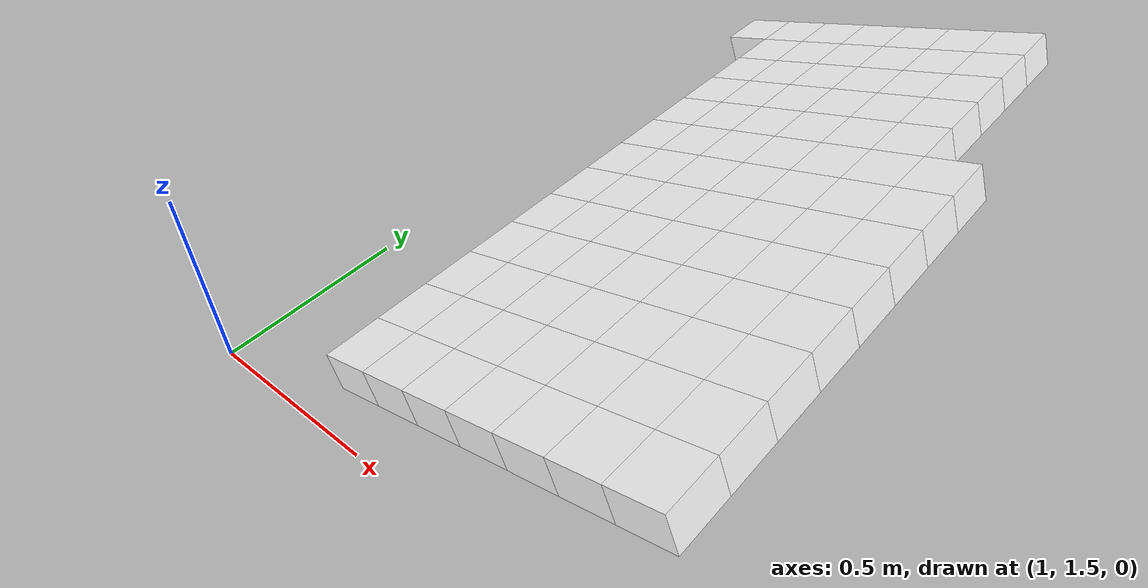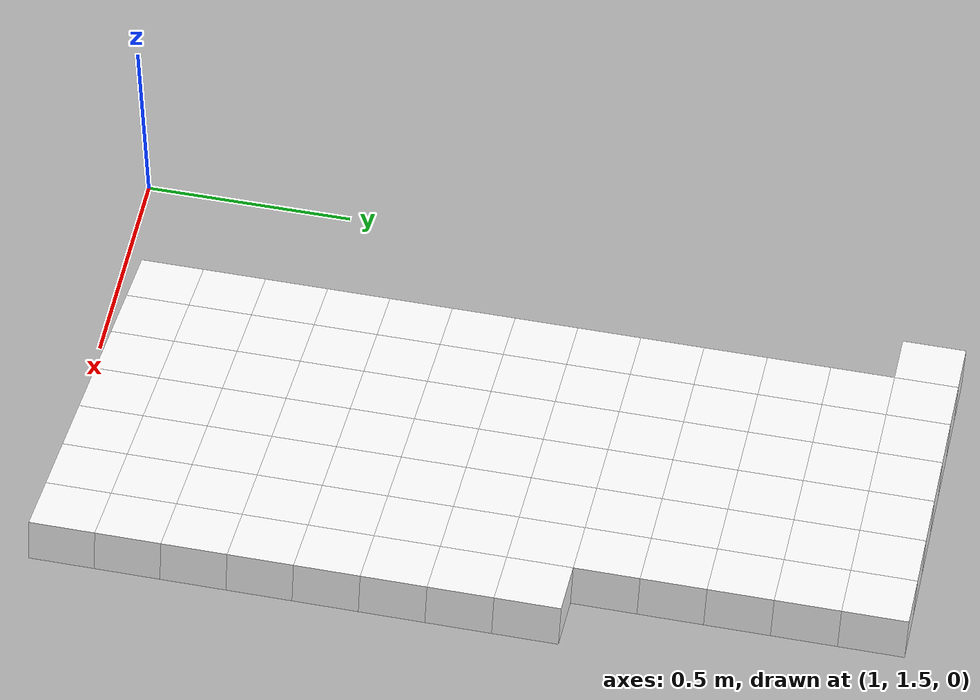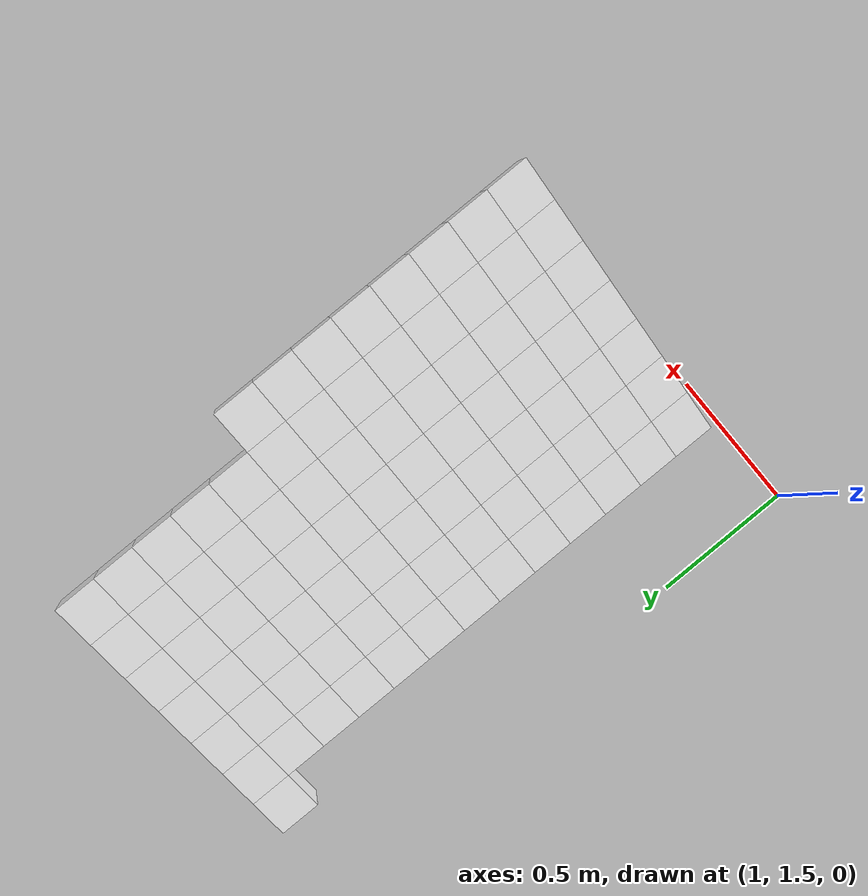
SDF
<sdf version="1.7">
 <world name="default">
  <include><uri>model://sun</uri></include>
  <model name="static_environment">
   <static>true</static>
   <link name="region_473">
    <pose>1.4350740071713122 1.65 0.1466852591640488 0.0 -0.3 0.0</pose>
    <collision name="region_473_collision">
     <geometry><box><size>0.15 0.15 0.1</size></box></geometry>
     <surface><friction><ode><mu>1.0</mu><mu2>1.0</mu2></ode></friction></surface>
    </collision>
    <visual name="region_473_visual">
     <geometry><box><size>0.15 0.15 0.1</size></box></geometry>
     <material><ambient>1.0 1.0 1.0 1.0</ambient><diffuse>1.0 1.0 1.0 1.0</diffuse></material>
    </visual>
   </link>
   <link name="region_474">
    <pose>1.5783744805401532 1.65 0.1910132901632498 0.0 -0.3 0.0</pose>
    <collision name="region_474_collision">
     <geometry><box><size>0.15 0.15 0.1</size></box></geometry>
     <surface><friction><ode><mu>1.0</mu><mu2>1.0</mu2></ode></friction></surface>
    </collision>
    <visual name="region_474_visual">
     <geometry><box><size>0.15 0.15 0.1</size></box></geometry>
     <material><ambient>1.0 1.0 1.0 1.0</ambient><diffuse>1.0 1.0 1.0 1.0</diffuse></material>
    </visual>
   </link>
   <link name="region_475">
    <pose>1.7216749539089942 1.65 0.2353413211624507 0.0 -0.3 0.0</pose>
    <collision name="region_475_collision">
     <geometry><box><size>0.15 0.15 0.1</size></box></geometry>
     <surface><friction><ode><mu>1.0</mu><mu2>1.0</mu2></ode></friction></surface>
    </collision>
    <visual name="region_475_visual">
     <geometry><box><size>0.15 0.15 0.1</size></box></geometry>
     <material><ambient>1.0 1.0 1.0 1.0</ambient><diffuse>1.0 1.0 1.0 1.0</diffuse></material>
    </visual>
   </link>
   <link name="region_476">
    <pose>1.8649754272778347 1.65 0.2796693521616516 0.0 -0.3 0.0</pose>
    <collision name="region_476_collision">
     <geometry><box><size>0.15 0.15 0.1</size></box></geometry>
     <surface><friction><ode><mu>1.0</mu><mu2>1.0</mu2></ode></friction></surface>
    </collision>
    <visual name="region_476_visual">
     <geometry><box><size>0.15 0.15 0.1</size></box></geometry>
     <material><ambient>1.0 1.0 1.0 1.0</ambient><diffuse>1.0 1.0 1.0 1.0</diffuse></material>
    </visual>
   </link>
   <link name="region_477">
    <pose>2.0082759006466757 1.65 0.3239973831608525 0.0 -0.3 0.0</pose>
    <collision name="region_477_collision">
     <geometry><box><size>0.15 0.15 0.1</size></box></geometry>
     <surface><friction><ode><mu>1.0</mu><mu2>1.0</mu2></ode></friction></surface>
    </collision>
    <visual name="region_477_visual">
     <geometry><box><size>0.15 0.15 0.1</size></box></geometry>
     <material><ambient>1.0 1.0 1.0 1.0</ambient><diffuse>1.0 1.0 1.0 1.0</diffuse></material>
    </visual>
   </link>
   <link name="region_478">
    <pose>2.151576374015516 1.65 0.36832541416005343 0.0 -0.3 0.0</pose>
    <collision name="region_478_collision">
     <geometry><box><size>0.15 0.15 0.1</size></box></geometry>
     <surface><friction><ode><mu>1.0</mu><mu2>1.0</mu2></ode></friction></surface>
    </collision>
    <visual name="region_478_visual">
     <geometry><box><size>0.15 0.15 0.1</size></box></geometry>
     <material><ambient>1.0 1.0 1.0 1.0</ambient><diffuse>1.0 1.0 1.0 1.0</diffuse></material>
    </visual>
   </link>
   <link name="region_479">
    <pose>2.2948768473843577 1.65 0.41265344515925434 0.0 -0.3 0.0</pose>
    <collision name="region_479_collision">
     <geometry><box><size>0.15 0.15 0.1</size></box></geometry>
     <surface><friction><ode><mu>1.0</mu><mu2>1.0</mu2></ode></friction></surface>
    </collision>
    <visual name="region_479_visual">
     <geometry><box><size>0.15 0.15 0.1</size></box></geometry>
     <material><ambient>1.0 1.0 1.0 1.0</ambient><diffuse>1.0 1.0 1.0 1.0</diffuse></material>
    </visual>
   </link>
   <link name="region_483">
    <pose>1.4350740071713122 1.7999999999999998 0.1466852591640488 0.0 -0.3 0.0</pose>
    <collision name="region_483_collision">
     <geometry><box><size>0.15 0.15 0.1</size></box></geometry>
     <surface><friction><ode><mu>1.0</mu><mu2>1.0</mu2></ode></friction></surface>
    </collision>
    <visual name="region_483_visual">
     <geometry><box><size>0.15 0.15 0.1</size></box></geometry>
     <material><ambient>1.0 1.0 1.0 1.0</ambient><diffuse>1.0 1.0 1.0 1.0</diffuse></material>
    </visual>
   </link>
   <link name="region_484">
    <pose>1.5783744805401532 1.7999999999999998 0.1910132901632498 0.0 -0.3 0.0</pose>
    <collision name="region_484_collision">
     <geometry><box><size>0.15 0.15 0.1</size></box></geometry>
     <surface><friction><ode><mu>1.0</mu><mu2>1.0</mu2></ode></friction></surface>
    </collision>
    <visual name="region_484_visual">
     <geometry><box><size>0.15 0.15 0.1</size></box></geometry>
     <material><ambient>1.0 1.0 1.0 1.0</ambient><diffuse>1.0 1.0 1.0 1.0</diffuse></material>
    </visual>
   </link>
   <link name="region_485">
    <pose>1.7216749539089942 1.7999999999999998 0.2353413211624507 0.0 -0.3 0.0</pose>
    <collision name="region_485_collision">
     <geometry><box><size>0.15 0.15 0.1</size></box></geometry>
     <surface><friction><ode><mu>1.0</mu><mu2>1.0</mu2></ode></friction></surface>
    </collision>
    <visual name="region_485_visual">
     <geometry><box><size>0.15 0.15 0.1</size></box></geometry>
     <material><ambient>1.0 1.0 1.0 1.0</ambient><diffuse>1.0 1.0 1.0 1.0</diffuse></material>
    </visual>
   </link>
   <link name="region_486">
    <pose>1.8649754272778347 1.7999999999999998 0.2796693521616516 0.0 -0.3 0.0</pose>
    <collision name="region_486_collision">
     <geometry><box><size>0.15 0.15 0.1</size></box></geometry>
     <surface><friction><ode><mu>1.0</mu><mu2>1.0</mu2></ode></friction></surface>
    </collision>
    <visual name="region_486_visual">
     <geometry><box><size>0.15 0.15 0.1</size></box></geometry>
     <material><ambient>1.0 1.0 1.0 1.0</ambient><diffuse>1.0 1.0 1.0 1.0</diffuse></material>
    </visual>
   </link>
   <link name="region_487">
    <pose>2.0082759006466757 1.7999999999999998 0.3239973831608525 0.0 -0.3 0.0</pose>
    <collision name="region_487_collision">
     <geometry><box><size>0.15 0.15 0.1</size></box></geometry>
     <surface><friction><ode><mu>1.0</mu><mu2>1.0</mu2></ode></friction></surface>
    </collision>
    <visual name="region_487_visual">
     <geometry><box><size>0.15 0.15 0.1</size></box></geometry>
     <material><ambient>1.0 1.0 1.0 1.0</ambient><diffuse>1.0 1.0 1.0 1.0</diffuse></material>
    </visual>
   </link>
   <link name="region_488">
    <pose>2.151576374015516 1.7999999999999998 0.36832541416005343 0.0 -0.3 0.0</pose>
    <collision name="region_488_collision">
     <geometry><box><size>0.15 0.15 0.1</size></box></geometry>
     <surface><friction><ode><mu>1.0</mu><mu2>1.0</mu2></ode></friction></surface>
    </collision>
    <visual name="region_488_visual">
     <geometry><box><size>0.15 0.15 0.1</size></box></geometry>
     <material><ambient>1.0 1.0 1.0 1.0</ambient><diffuse>1.0 1.0 1.0 1.0</diffuse></material>
    </visual>
   </link>
   <link name="region_489">
    <pose>2.2948768473843577 1.7999999999999998 0.41265344515925434 0.0 -0.3 0.0</pose>
    <collision name="region_489_collision">
     <geometry><box><size>0.15 0.15 0.1</size></box></geometry>
     <surface><friction><ode><mu>1.0</mu><mu2>1.0</mu2></ode></friction></surface>
    </collision>
    <visual name="region_489_visual">
     <geometry><box><size>0.15 0.15 0.1</size></box></geometry>
     <material><ambient>1.0 1.0 1.0 1.0</ambient><diffuse>1.0 1.0 1.0 1.0</diffuse></material>
    </visual>
   </link>
   <link name="region_493">
    <pose>1.4350740071713122 1.9499999999999997 0.1466852591640488 0.0 -0.3 0.0</pose>
    <collision name="region_493_collision">
     <geometry><box><size>0.15 0.15 0.1</size></box></geometry>
     <surface><friction><ode><mu>1.0</mu><mu2>1.0</mu2></ode></friction></surface>
    </collision>
    <visual name="region_493_visual">
     <geometry><box><size>0.15 0.15 0.1</size></box></geometry>
     <material><ambient>1.0 1.0 1.0 1.0</ambient><diffuse>1.0 1.0 1.0 1.0</diffuse></material>
    </visual>
   </link>
   <link name="region_494">
    <pose>1.5783744805401532 1.9499999999999997 0.1910132901632498 0.0 -0.3 0.0</pose>
    <collision name="region_494_collision">
     <geometry><box><size>0.15 0.15 0.1</size></box></geometry>
     <surface><friction><ode><mu>1.0</mu><mu2>1.0</mu2></ode></friction></surface>
    </collision>
    <visual name="region_494_visual">
     <geometry><box><size>0.15 0.15 0.1</size></box></geometry>
     <material><ambient>1.0 1.0 1.0 1.0</ambient><diffuse>1.0 1.0 1.0 1.0</diffuse></material>
    </visual>
   </link>
   <link name="region_495">
    <pose>1.7216749539089942 1.9499999999999997 0.2353413211624507 0.0 -0.3 0.0</pose>
    <collision name="region_495_collision">
     <geometry><box><size>0.15 0.15 0.1</size></box></geometry>
     <surface><friction><ode><mu>1.0</mu><mu2>1.0</mu2></ode></friction></surface>
    </collision>
    <visual name="region_495_visual">
     <geometry><box><size>0.15 0.15 0.1</size></box></geometry>
     <material><ambient>1.0 1.0 1.0 1.0</ambient><diffuse>1.0 1.0 1.0 1.0</diffuse></material>
    </visual>
   </link>
   <link name="region_496">
    <pose>1.8649754272778347 1.9499999999999997 0.2796693521616516 0.0 -0.3 0.0</pose>
    <collision name="region_496_collision">
     <geometry><box><size>0.15 0.15 0.1</size></box></geometry>
     <surface><friction><ode><mu>1.0</mu><mu2>1.0</mu2></ode></friction></surface>
    </collision>
    <visual name="region_496_visual">
     <geometry><box><size>0.15 0.15 0.1</size></box></geometry>
     <material><ambient>1.0 1.0 1.0 1.0</ambient><diffuse>1.0 1.0 1.0 1.0</diffuse></material>
    </visual>
   </link>
   <link name="region_497">
    <pose>2.0082759006466757 1.9499999999999997 0.3239973831608525 0.0 -0.3 0.0</pose>
    <collision name="region_497_collision">
     <geometry><box><size>0.15 0.15 0.1</size></box></geometry>
     <surface><friction><ode><mu>1.0</mu><mu2>1.0</mu2></ode></friction></surface>
    </collision>
    <visual name="region_497_visual">
     <geometry><box><size>0.15 0.15 0.1</size></box></geometry>
     <material><ambient>1.0 1.0 1.0 1.0</ambient><diffuse>1.0 1.0 1.0 1.0</diffuse></material>
    </visual>
   </link>
   <link name="region_498">
    <pose>2.151576374015516 1.9499999999999997 0.36832541416005343 0.0 -0.3 0.0</pose>
    <collision name="region_498_collision">
     <geometry><box><size>0.15 0.15 0.1</size></box></geometry>
     <surface><friction><ode><mu>1.0</mu><mu2>1.0</mu2></ode></friction></surface>
    </collision>
    <visual name="region_498_visual">
     <geometry><box><size>0.15 0.15 0.1</size></box></geometry>
     <material><ambient>1.0 1.0 1.0 1.0</ambient><diffuse>1.0 1.0 1.0 1.0</diffuse></material>
    </visual>
   </link>
   <link name="region_499">
    <pose>2.2948768473843577 1.9499999999999997 0.41265344515925434 0.0 -0.3 0.0</pose>
    <collision name="region_499_collision">
     <geometry><box><size>0.15 0.15 0.1</size></box></geometry>
     <surface><friction><ode><mu>1.0</mu><mu2>1.0</mu2></ode></friction></surface>
    </collision>
    <visual name="region_499_visual">
     <geometry><box><size>0.15 0.15 0.1</size></box></geometry>
     <material><ambient>1.0 1.0 1.0 1.0</ambient><diffuse>1.0 1.0 1.0 1.0</diffuse></material>
    </visual>
   </link>
   <link name="region_503">
    <pose>1.4350740071713122 2.0999999999999996 0.1466852591640488 0.0 -0.3 0.0</pose>
    <collision name="region_503_collision">
     <geometry><box><size>0.15 0.15 0.1</size></box></geometry>
     <surface><friction><ode><mu>1.0</mu><mu2>1.0</mu2></ode></friction></surface>
    </collision>
    <visual name="region_503_visual">
     <geometry><box><size>0.15 0.15 0.1</size></box></geometry>
     <material><ambient>1.0 1.0 1.0 1.0</ambient><diffuse>1.0 1.0 1.0 1.0</diffuse></material>
    </visual>
   </link>
   <link name="region_504">
    <pose>1.5783744805401532 2.0999999999999996 0.1910132901632498 0.0 -0.3 0.0</pose>
    <collision name="region_504_collision">
     <geometry><box><size>0.15 0.15 0.1</size></box></geometry>
     <surface><friction><ode><mu>1.0</mu><mu2>1.0</mu2></ode></friction></surface>
    </collision>
    <visual name="region_504_visual">
     <geometry><box><size>0.15 0.15 0.1</size></box></geometry>
     <material><ambient>1.0 1.0 1.0 1.0</ambient><diffuse>1.0 1.0 1.0 1.0</diffuse></material>
    </visual>
   </link>
   <link name="region_505">
    <pose>1.7216749539089942 2.0999999999999996 0.2353413211624507 0.0 -0.3 0.0</pose>
    <collision name="region_505_collision">
     <geometry><box><size>0.15 0.15 0.1</size></box></geometry>
     <surface><friction><ode><mu>1.0</mu><mu2>1.0</mu2></ode></friction></surface>
    </collision>
    <visual name="region_505_visual">
     <geometry><box><size>0.15 0.15 0.1</size></box></geometry>
     <material><ambient>1.0 1.0 1.0 1.0</ambient><diffuse>1.0 1.0 1.0 1.0</diffuse></material>
    </visual>
   </link>
   <link name="region_506">
    <pose>1.8649754272778347 2.0999999999999996 0.2796693521616516 0.0 -0.3 0.0</pose>
    <collision name="region_506_collision">
     <geometry><box><size>0.15 0.15 0.1</size></box></geometry>
     <surface><friction><ode><mu>1.0</mu><mu2>1.0</mu2></ode></friction></surface>
    </collision>
    <visual name="region_506_visual">
     <geometry><box><size>0.15 0.15 0.1</size></box></geometry>
     <material><ambient>1.0 1.0 1.0 1.0</ambient><diffuse>1.0 1.0 1.0 1.0</diffuse></material>
    </visual>
   </link>
   <link name="region_507">
    <pose>2.0082759006466757 2.0999999999999996 0.3239973831608525 0.0 -0.3 0.0</pose>
    <collision name="region_507_collision">
     <geometry><box><size>0.15 0.15 0.1</size></box></geometry>
     <surface><friction><ode><mu>1.0</mu><mu2>1.0</mu2></ode></friction></surface>
    </collision>
    <visual name="region_507_visual">
     <geometry><box><size>0.15 0.15 0.1</size></box></geometry>
     <material><ambient>1.0 1.0 1.0 1.0</ambient><diffuse>1.0 1.0 1.0 1.0</diffuse></material>
    </visual>
   </link>
   <link name="region_508">
    <pose>2.151576374015516 2.0999999999999996 0.36832541416005343 0.0 -0.3 0.0</pose>
    <collision name="region_508_collision">
     <geometry><box><size>0.15 0.15 0.1</size></box></geometry>
     <surface><friction><ode><mu>1.0</mu><mu2>1.0</mu2></ode></friction></surface>
    </collision>
    <visual name="region_508_visual">
     <geometry><box><size>0.15 0.15 0.1</size></box></geometry>
     <material><ambient>1.0 1.0 1.0 1.0</ambient><diffuse>1.0 1.0 1.0 1.0</diffuse></material>
    </visual>
   </link>
   <link name="region_509">
    <pose>2.2948768473843577 2.0999999999999996 0.41265344515925434 0.0 -0.3 0.0</pose>
    <collision name="region_509_collision">
     <geometry><box><size>0.15 0.15 0.1</size></box></geometry>
     <surface><friction><ode><mu>1.0</mu><mu2>1.0</mu2></ode></friction></surface>
    </collision>
    <visual name="region_509_visual">
     <geometry><box><size>0.15 0.15 0.1</size></box></geometry>
     <material><ambient>1.0 1.0 1.0 1.0</ambient><diffuse>1.0 1.0 1.0 1.0</diffuse></material>
    </visual>
   </link>
   <link name="region_513">
    <pose>1.4350740071713122 2.2499999999999996 0.1466852591640488 0.0 -0.3 0.0</pose>
    <collision name="region_513_collision">
     <geometry><box><size>0.15 0.15 0.1</size></box></geometry>
     <surface><friction><ode><mu>1.0</mu><mu2>1.0</mu2></ode></friction></surface>
    </collision>
    <visual name="region_513_visual">
     <geometry><box><size>0.15 0.15 0.1</size></box></geometry>
     <material><ambient>1.0 1.0 1.0 1.0</ambient><diffuse>1.0 1.0 1.0 1.0</diffuse></material>
    </visual>
   </link>
   <link name="region_514">
    <pose>1.5783744805401532 2.2499999999999996 0.1910132901632498 0.0 -0.3 0.0</pose>
    <collision name="region_514_collision">
     <geometry><box><size>0.15 0.15 0.1</size></box></geometry>
     <surface><friction><ode><mu>1.0</mu><mu2>1.0</mu2></ode></friction></surface>
    </collision>
    <visual name="region_514_visual">
     <geometry><box><size>0.15 0.15 0.1</size></box></geometry>
     <material><ambient>1.0 1.0 1.0 1.0</ambient><diffuse>1.0 1.0 1.0 1.0</diffuse></material>
    </visual>
   </link>
   <link name="region_515">
    <pose>1.7216749539089942 2.2499999999999996 0.2353413211624507 0.0 -0.3 0.0</pose>
    <collision name="region_515_collision">
     <geometry><box><size>0.15 0.15 0.1</size></box></geometry>
     <surface><friction><ode><mu>1.0</mu><mu2>1.0</mu2></ode></friction></surface>
    </collision>
    <visual name="region_515_visual">
     <geometry><box><size>0.15 0.15 0.1</size></box></geometry>
     <material><ambient>1.0 1.0 1.0 1.0</ambient><diffuse>1.0 1.0 1.0 1.0</diffuse></material>
    </visual>
   </link>
   <link name="region_516">
    <pose>1.8649754272778347 2.2499999999999996 0.2796693521616516 0.0 -0.3 0.0</pose>
    <collision name="region_516_collision">
     <geometry><box><size>0.15 0.15 0.1</size></box></geometry>
     <surface><friction><ode><mu>1.0</mu><mu2>1.0</mu2></ode></friction></surface>
    </collision>
    <visual name="region_516_visual">
     <geometry><box><size>0.15 0.15 0.1</size></box></geometry>
     <material><ambient>1.0 1.0 1.0 1.0</ambient><diffuse>1.0 1.0 1.0 1.0</diffuse></material>
    </visual>
   </link>
   <link name="region_517">
    <pose>2.0082759006466757 2.2499999999999996 0.3239973831608525 0.0 -0.3 0.0</pose>
    <collision name="region_517_collision">
     <geometry><box><size>0.15 0.15 0.1</size></box></geometry>
     <surface><friction><ode><mu>1.0</mu><mu2>1.0</mu2></ode></friction></surface>
    </collision>
    <visual name="region_517_visual">
     <geometry><box><size>0.15 0.15 0.1</size></box></geometry>
     <material><ambient>1.0 1.0 1.0 1.0</ambient><diffuse>1.0 1.0 1.0 1.0</diffuse></material>
    </visual>
   </link>
   <link name="region_518">
    <pose>2.151576374015516 2.2499999999999996 0.36832541416005343 0.0 -0.3 0.0</pose>
    <collision name="region_518_collision">
     <geometry><box><size>0.15 0.15 0.1</size></box></geometry>
     <surface><friction><ode><mu>1.0</mu><mu2>1.0</mu2></ode></friction></surface>
    </collision>
    <visual name="region_518_visual">
     <geometry><box><size>0.15 0.15 0.1</size></box></geometry>
     <material><ambient>1.0 1.0 1.0 1.0</ambient><diffuse>1.0 1.0 1.0 1.0</diffuse></material>
    </visual>
   </link>
   <link name="region_519">
    <pose>2.2948768473843577 2.2499999999999996 0.41265344515925434 0.0 -0.3 0.0</pose>
    <collision name="region_519_collision">
     <geometry><box><size>0.15 0.15 0.1</size></box></geometry>
     <surface><friction><ode><mu>1.0</mu><mu2>1.0</mu2></ode></friction></surface>
    </collision>
    <visual name="region_519_visual">
     <geometry><box><size>0.15 0.15 0.1</size></box></geometry>
     <material><ambient>1.0 1.0 1.0 1.0</ambient><diffuse>1.0 1.0 1.0 1.0</diffuse></material>
    </visual>
   </link>
   <link name="region_523">
    <pose>1.4350740071713122 2.3999999999999995 0.1466852591640488 0.0 -0.3 0.0</pose>
    <collision name="region_523_collision">
     <geometry><box><size>0.15 0.15 0.1</size></box></geometry>
     <surface><friction><ode><mu>1.0</mu><mu2>1.0</mu2></ode></friction></surface>
    </collision>
    <visual name="region_523_visual">
     <geometry><box><size>0.15 0.15 0.1</size></box></geometry>
     <material><ambient>1.0 1.0 1.0 1.0</ambient><diffuse>1.0 1.0 1.0 1.0</diffuse></material>
    </visual>
   </link>
   <link name="region_524">
    <pose>1.5783744805401532 2.3999999999999995 0.1910132901632498 0.0 -0.3 0.0</pose>
    <collision name="region_524_collision">
     <geometry><box><size>0.15 0.15 0.1</size></box></geometry>
     <surface><friction><ode><mu>1.0</mu><mu2>1.0</mu2></ode></friction></surface>
    </collision>
    <visual name="region_524_visual">
     <geometry><box><size>0.15 0.15 0.1</size></box></geometry>
     <material><ambient>1.0 1.0 1.0 1.0</ambient><diffuse>1.0 1.0 1.0 1.0</diffuse></material>
    </visual>
   </link>
   <link name="region_525">
    <pose>1.7216749539089942 2.3999999999999995 0.2353413211624507 0.0 -0.3 0.0</pose>
    <collision name="region_525_collision">
     <geometry><box><size>0.15 0.15 0.1</size></box></geometry>
     <surface><friction><ode><mu>1.0</mu><mu2>1.0</mu2></ode></friction></surface>
    </collision>
    <visual name="region_525_visual">
     <geometry><box><size>0.15 0.15 0.1</size></box></geometry>
     <material><ambient>1.0 1.0 1.0 1.0</ambient><diffuse>1.0 1.0 1.0 1.0</diffuse></material>
    </visual>
   </link>
   <link name="region_526">
    <pose>1.8649754272778347 2.3999999999999995 0.2796693521616516 0.0 -0.3 0.0</pose>
    <collision name="region_526_collision">
     <geometry><box><size>0.15 0.15 0.1</size></box></geometry>
     <surface><friction><ode><mu>1.0</mu><mu2>1.0</mu2></ode></friction></surface>
    </collision>
    <visual name="region_526_visual">
     <geometry><box><size>0.15 0.15 0.1</size></box></geometry>
     <material><ambient>1.0 1.0 1.0 1.0</ambient><diffuse>1.0 1.0 1.0 1.0</diffuse></material>
    </visual>
   </link>
   <link name="region_527">
    <pose>2.0082759006466757 2.3999999999999995 0.3239973831608525 0.0 -0.3 0.0</pose>
    <collision name="region_527_collision">
     <geometry><box><size>0.15 0.15 0.1</size></box></geometry>
     <surface><friction><ode><mu>1.0</mu><mu2>1.0</mu2></ode></friction></surface>
    </collision>
    <visual name="region_527_visual">
     <geometry><box><size>0.15 0.15 0.1</size></box></geometry>
     <material><ambient>1.0 1.0 1.0 1.0</ambient><diffuse>1.0 1.0 1.0 1.0</diffuse></material>
    </visual>
   </link>
   <link name="region_528">
    <pose>2.151576374015516 2.3999999999999995 0.36832541416005343 0.0 -0.3 0.0</pose>
    <collision name="region_528_collision">
     <geometry><box><size>0.15 0.15 0.1</size></box></geometry>
     <surface><friction><ode><mu>1.0</mu><mu2>1.0</mu2></ode></friction></surface>
    </collision>
    <visual name="region_528_visual">
     <geometry><box><size>0.15 0.15 0.1</size></box></geometry>
     <material><ambient>1.0 1.0 1.0 1.0</ambient><diffuse>1.0 1.0 1.0 1.0</diffuse></material>
    </visual>
   </link>
   <link name="region_529">
    <pose>2.2948768473843577 2.3999999999999995 0.41265344515925434 0.0 -0.3 0.0</pose>
    <collision name="region_529_collision">
     <geometry><box><size>0.15 0.15 0.1</size></box></geometry>
     <surface><friction><ode><mu>1.0</mu><mu2>1.0</mu2></ode></friction></surface>
    </collision>
    <visual name="region_529_visual">
     <geometry><box><size>0.15 0.15 0.1</size></box></geometry>
     <material><ambient>1.0 1.0 1.0 1.0</ambient><diffuse>1.0 1.0 1.0 1.0</diffuse></material>
    </visual>
   </link>
   <link name="region_533">
    <pose>1.4350740071713122 2.5499999999999994 0.1466852591640488 0.0 -0.3 0.0</pose>
    <collision name="region_533_collision">
     <geometry><box><size>0.15 0.15 0.1</size></box></geometry>
     <surface><friction><ode><mu>1.0</mu><mu2>1.0</mu2></ode></friction></surface>
    </collision>
    <visual name="region_533_visual">
     <geometry><box><size>0.15 0.15 0.1</size></box></geometry>
     <material><ambient>1.0 1.0 1.0 1.0</ambient><diffuse>1.0 1.0 1.0 1.0</diffuse></material>
    </visual>
   </link>
   <link name="region_534">
    <pose>1.5783744805401532 2.5499999999999994 0.1910132901632498 0.0 -0.3 0.0</pose>
    <collision name="region_534_collision">
     <geometry><box><size>0.15 0.15 0.1</size></box></geometry>
     <surface><friction><ode><mu>1.0</mu><mu2>1.0</mu2></ode></friction></surface>
    </collision>
    <visual name="region_534_visual">
     <geometry><box><size>0.15 0.15 0.1</size></box></geometry>
     <material><ambient>1.0 1.0 1.0 1.0</ambient><diffuse>1.0 1.0 1.0 1.0</diffuse></material>
    </visual>
   </link>
   <link name="region_535">
    <pose>1.7216749539089942 2.5499999999999994 0.2353413211624507 0.0 -0.3 0.0</pose>
    <collision name="region_535_collision">
     <geometry><box><size>0.15 0.15 0.1</size></box></geometry>
     <surface><friction><ode><mu>1.0</mu><mu2>1.0</mu2></ode></friction></surface>
    </collision>
    <visual name="region_535_visual">
     <geometry><box><size>0.15 0.15 0.1</size></box></geometry>
     <material><ambient>1.0 1.0 1.0 1.0</ambient><diffuse>1.0 1.0 1.0 1.0</diffuse></material>
    </visual>
   </link>
   <link name="region_536">
    <pose>1.8649754272778347 2.5499999999999994 0.2796693521616516 0.0 -0.3 0.0</pose>
    <collision name="region_536_collision">
     <geometry><box><size>0.15 0.15 0.1</size></box></geometry>
     <surface><friction><ode><mu>1.0</mu><mu2>1.0</mu2></ode></friction></surface>
    </collision>
    <visual name="region_536_visual">
     <geometry><box><size>0.15 0.15 0.1</size></box></geometry>
     <material><ambient>1.0 1.0 1.0 1.0</ambient><diffuse>1.0 1.0 1.0 1.0</diffuse></material>
    </visual>
   </link>
   <link name="region_537">
    <pose>2.0082759006466757 2.5499999999999994 0.3239973831608525 0.0 -0.3 0.0</pose>
    <collision name="region_537_collision">
     <geometry><box><size>0.15 0.15 0.1</size></box></geometry>
     <surface><friction><ode><mu>1.0</mu><mu2>1.0</mu2></ode></friction></surface>
    </collision>
    <visual name="region_537_visual">
     <geometry><box><size>0.15 0.15 0.1</size></box></geometry>
     <material><ambient>1.0 1.0 1.0 1.0</ambient><diffuse>1.0 1.0 1.0 1.0</diffuse></material>
    </visual>
   </link>
   <link name="region_538">
    <pose>2.151576374015516 2.5499999999999994 0.36832541416005343 0.0 -0.3 0.0</pose>
    <collision name="region_538_collision">
     <geometry><box><size>0.15 0.15 0.1</size></box></geometry>
     <surface><friction><ode><mu>1.0</mu><mu2>1.0</mu2></ode></friction></surface>
    </collision>
    <visual name="region_538_visual">
     <geometry><box><size>0.15 0.15 0.1</size></box></geometry>
     <material><ambient>1.0 1.0 1.0 1.0</ambient><diffuse>1.0 1.0 1.0 1.0</diffuse></material>
    </visual>
   </link>
   <link name="region_539">
    <pose>2.2948768473843577 2.5499999999999994 0.41265344515925434 0.0 -0.3 0.0</pose>
    <collision name="region_539_collision">
     <geometry><box><size>0.15 0.15 0.1</size></box></geometry>
     <surface><friction><ode><mu>1.0</mu><mu2>1.0</mu2></ode></friction></surface>
    </collision>
    <visual name="region_539_visual">
     <geometry><box><size>0.15 0.15 0.1</size></box></geometry>
     <material><ambient>1.0 1.0 1.0 1.0</ambient><diffuse>1.0 1.0 1.0 1.0</diffuse></material>
    </visual>
   </link>
   <link name="region_543">
    <pose>1.4350740071713122 2.6999999999999997 0.1466852591640488 0.0 -0.3 0.0</pose>
    <collision name="region_543_collision">
     <geometry><box><size>0.15 0.15 0.1</size></box></geometry>
     <surface><friction><ode><mu>1.0</mu><mu2>1.0</mu2></ode></friction></surface>
    </collision>
    <visual name="region_543_visual">
     <geometry><box><size>0.15 0.15 0.1</size></box></geometry>
     <material><ambient>1.0 1.0 1.0 1.0</ambient><diffuse>1.0 1.0 1.0 1.0</diffuse></material>
    </visual>
   </link>
   <link name="region_544">
    <pose>1.5783744805401532 2.6999999999999997 0.1910132901632498 0.0 -0.3 0.0</pose>
    <collision name="region_544_collision">
     <geometry><box><size>0.15 0.15 0.1</size></box></geometry>
     <surface><friction><ode><mu>1.0</mu><mu2>1.0</mu2></ode></friction></surface>
    </collision>
    <visual name="region_544_visual">
     <geometry><box><size>0.15 0.15 0.1</size></box></geometry>
     <material><ambient>1.0 1.0 1.0 1.0</ambient><diffuse>1.0 1.0 1.0 1.0</diffuse></material>
    </visual>
   </link>
   <link name="region_545">
    <pose>1.7216749539089942 2.6999999999999997 0.2353413211624507 0.0 -0.3 0.0</pose>
    <collision name="region_545_collision">
     <geometry><box><size>0.15 0.15 0.1</size></box></geometry>
     <surface><friction><ode><mu>1.0</mu><mu2>1.0</mu2></ode></friction></surface>
    </collision>
    <visual name="region_545_visual">
     <geometry><box><size>0.15 0.15 0.1</size></box></geometry>
     <material><ambient>1.0 1.0 1.0 1.0</ambient><diffuse>1.0 1.0 1.0 1.0</diffuse></material>
    </visual>
   </link>
   <link name="region_546">
    <pose>1.8649754272778347 2.6999999999999997 0.2796693521616516 0.0 -0.3 0.0</pose>
    <collision name="region_546_collision">
     <geometry><box><size>0.15 0.15 0.1</size></box></geometry>
     <surface><friction><ode><mu>1.0</mu><mu2>1.0</mu2></ode></friction></surface>
    </collision>
    <visual name="region_546_visual">
     <geometry><box><size>0.15 0.15 0.1</size></box></geometry>
     <material><ambient>1.0 1.0 1.0 1.0</ambient><diffuse>1.0 1.0 1.0 1.0</diffuse></material>
    </visual>
   </link>
   <link name="region_547">
    <pose>2.0082759006466757 2.6999999999999997 0.3239973831608525 0.0 -0.3 0.0</pose>
    <collision name="region_547_collision">
     <geometry><box><size>0.15 0.15 0.1</size></box></geometry>
     <surface><friction><ode><mu>1.0</mu><mu2>1.0</mu2></ode></friction></surface>
    </collision>
    <visual name="region_547_visual">
     <geometry><box><size>0.15 0.15 0.1</size></box></geometry>
     <material><ambient>1.0 1.0 1.0 1.0</ambient><diffuse>1.0 1.0 1.0 1.0</diffuse></material>
    </visual>
   </link>
   <link name="region_548">
    <pose>2.151576374015516 2.6999999999999997 0.36832541416005343 0.0 -0.3 0.0</pose>
    <collision name="region_548_collision">
     <geometry><box><size>0.15 0.15 0.1</size></box></geometry>
     <surface><friction><ode><mu>1.0</mu><mu2>1.0</mu2></ode></friction></surface>
    </collision>
    <visual name="region_548_visual">
     <geometry><box><size>0.15 0.15 0.1</size></box></geometry>
     <material><ambient>1.0 1.0 1.0 1.0</ambient><diffuse>1.0 1.0 1.0 1.0</diffuse></material>
    </visual>
   </link>
   <link name="region_549">
    <pose>2.2948768473843577 2.6999999999999997 0.41265344515925434 0.0 -0.3 0.0</pose>
    <collision name="region_549_collision">
     <geometry><box><size>0.15 0.15 0.1</size></box></geometry>
     <surface><friction><ode><mu>1.0</mu><mu2>1.0</mu2></ode></friction></surface>
    </collision>
    <visual name="region_549_visual">
     <geometry><box><size>0.15 0.15 0.1</size></box></geometry>
     <material><ambient>1.0 1.0 1.0 1.0</ambient><diffuse>1.0 1.0 1.0 1.0</diffuse></material>
    </visual>
   </link>
   <link name="region_553">
    <pose>1.4350740071713122 2.8499999999999996 0.1466852591640488 0.0 -0.3 0.0</pose>
    <collision name="region_553_collision">
     <geometry><box><size>0.15 0.15 0.1</size></box></geometry>
     <surface><friction><ode><mu>1.0</mu><mu2>1.0</mu2></ode></friction></surface>
    </collision>
    <visual name="region_553_visual">
     <geometry><box><size>0.15 0.15 0.1</size></box></geometry>
     <material><ambient>1.0 1.0 1.0 1.0</ambient><diffuse>1.0 1.0 1.0 1.0</diffuse></material>
    </visual>
   </link>
   <link name="region_554">
    <pose>1.5783744805401532 2.8499999999999996 0.1910132901632498 0.0 -0.3 0.0</pose>
    <collision name="region_554_collision">
     <geometry><box><size>0.15 0.15 0.1</size></box></geometry>
     <surface><friction><ode><mu>1.0</mu><mu2>1.0</mu2></ode></friction></surface>
    </collision>
    <visual name="region_554_visual">
     <geometry><box><size>0.15 0.15 0.1</size></box></geometry>
     <material><ambient>1.0 1.0 1.0 1.0</ambient><diffuse>1.0 1.0 1.0 1.0</diffuse></material>
    </visual>
   </link>
   <link name="region_555">
    <pose>1.7216749539089942 2.8499999999999996 0.2353413211624507 0.0 -0.3 0.0</pose>
    <collision name="region_555_collision">
     <geometry><box><size>0.15 0.15 0.1</size></box></geometry>
     <surface><friction><ode><mu>1.0</mu><mu2>1.0</mu2></ode></friction></surface>
    </collision>
    <visual name="region_555_visual">
     <geometry><box><size>0.15 0.15 0.1</size></box></geometry>
     <material><ambient>1.0 1.0 1.0 1.0</ambient><diffuse>1.0 1.0 1.0 1.0</diffuse></material>
    </visual>
   </link>
   <link name="region_556">
    <pose>1.8649754272778347 2.8499999999999996 0.2796693521616516 0.0 -0.3 0.0</pose>
    <collision name="region_556_collision">
     <geometry><box><size>0.15 0.15 0.1</size></box></geometry>
     <surface><friction><ode><mu>1.0</mu><mu2>1.0</mu2></ode></friction></surface>
    </collision>
    <visual name="region_556_visual">
     <geometry><box><size>0.15 0.15 0.1</size></box></geometry>
     <material><ambient>1.0 1.0 1.0 1.0</ambient><diffuse>1.0 1.0 1.0 1.0</diffuse></material>
    </visual>
   </link>
   <link name="region_557">
    <pose>2.0082759006466757 2.8499999999999996 0.3239973831608525 0.0 -0.3 0.0</pose>
    <collision name="region_557_collision">
     <geometry><box><size>0.15 0.15 0.1</size></box></geometry>
     <surface><friction><ode><mu>1.0</mu><mu2>1.0</mu2></ode></friction></surface>
    </collision>
    <visual name="region_557_visual">
     <geometry><box><size>0.15 0.15 0.1</size></box></geometry>
     <material><ambient>1.0 1.0 1.0 1.0</ambient><diffuse>1.0 1.0 1.0 1.0</diffuse></material>
    </visual>
   </link>
   <link name="region_558">
    <pose>2.151576374015516 2.8499999999999996 0.36832541416005343 0.0 -0.3 0.0</pose>
    <collision name="region_558_collision">
     <geometry><box><size>0.15 0.15 0.1</size></box></geometry>
     <surface><friction><ode><mu>1.0</mu><mu2>1.0</mu2></ode></friction></surface>
    </collision>
    <visual name="region_558_visual">
     <geometry><box><size>0.15 0.15 0.1</size></box></geometry>
     <material><ambient>1.0 1.0 1.0 1.0</ambient><diffuse>1.0 1.0 1.0 1.0</diffuse></material>
    </visual>
   </link>
   <link name="region_563">
    <pose>1.4350740071713122 2.9999999999999996 0.1466852591640488 0.0 -0.3 0.0</pose>
    <collision name="region_563_collision">
     <geometry><box><size>0.15 0.15 0.1</size></box></geometry>
     <surface><friction><ode><mu>1.0</mu><mu2>1.0</mu2></ode></friction></surface>
    </collision>
    <visual name="region_563_visual">
     <geometry><box><size>0.15 0.15 0.1</size></box></geometry>
     <material><ambient>1.0 1.0 1.0 1.0</ambient><diffuse>1.0 1.0 1.0 1.0</diffuse></material>
    </visual>
   </link>
   <link name="region_564">
    <pose>1.5783744805401532 2.9999999999999996 0.1910132901632498 0.0 -0.3 0.0</pose>
    <collision name="region_564_collision">
     <geometry><box><size>0.15 0.15 0.1</size></box></geometry>
     <surface><friction><ode><mu>1.0</mu><mu2>1.0</mu2></ode></friction></surface>
    </collision>
    <visual name="region_564_visual">
     <geometry><box><size>0.15 0.15 0.1</size></box></geometry>
     <material><ambient>1.0 1.0 1.0 1.0</ambient><diffuse>1.0 1.0 1.0 1.0</diffuse></material>
    </visual>
   </link>
   <link name="region_565">
    <pose>1.7216749539089942 2.9999999999999996 0.2353413211624507 0.0 -0.3 0.0</pose>
    <collision name="region_565_collision">
     <geometry><box><size>0.15 0.15 0.1</size></box></geometry>
     <surface><friction><ode><mu>1.0</mu><mu2>1.0</mu2></ode></friction></surface>
    </collision>
    <visual name="region_565_visual">
     <geometry><box><size>0.15 0.15 0.1</size></box></geometry>
     <material><ambient>1.0 1.0 1.0 1.0</ambient><diffuse>1.0 1.0 1.0 1.0</diffuse></material>
    </visual>
   </link>
   <link name="region_566">
    <pose>1.8649754272778347 2.9999999999999996 0.2796693521616516 0.0 -0.3 0.0</pose>
    <collision name="region_566_collision">
     <geometry><box><size>0.15 0.15 0.1</size></box></geometry>
     <surface><friction><ode><mu>1.0</mu><mu2>1.0</mu2></ode></friction></surface>
    </collision>
    <visual name="region_566_visual">
     <geometry><box><size>0.15 0.15 0.1</size></box></geometry>
     <material><ambient>1.0 1.0 1.0 1.0</ambient><diffuse>1.0 1.0 1.0 1.0</diffuse></material>
    </visual>
   </link>
   <link name="region_567">
    <pose>2.0082759006466757 2.9999999999999996 0.3239973831608525 0.0 -0.3 0.0</pose>
    <collision name="region_567_collision">
     <geometry><box><size>0.15 0.15 0.1</size></box></geometry>
     <surface><friction><ode><mu>1.0</mu><mu2>1.0</mu2></ode></friction></surface>
    </collision>
    <visual name="region_567_visual">
     <geometry><box><size>0.15 0.15 0.1</size></box></geometry>
     <material><ambient>1.0 1.0 1.0 1.0</ambient><diffuse>1.0 1.0 1.0 1.0</diffuse></material>
    </visual>
   </link>
   <link name="region_568">
    <pose>2.151576374015516 2.9999999999999996 0.36832541416005343 0.0 -0.3 0.0</pose>
    <collision name="region_568_collision">
     <geometry><box><size>0.15 0.15 0.1</size></box></geometry>
     <surface><friction><ode><mu>1.0</mu><mu2>1.0</mu2></ode></friction></surface>
    </collision>
    <visual name="region_568_visual">
     <geometry><box><size>0.15 0.15 0.1</size></box></geometry>
     <material><ambient>1.0 1.0 1.0 1.0</ambient><diffuse>1.0 1.0 1.0 1.0</diffuse></material>
    </visual>
   </link>
   <link name="region_573">
    <pose>1.4350740071713122 3.1499999999999995 0.1466852591640488 0.0 -0.3 0.0</pose>
    <collision name="region_573_collision">
     <geometry><box><size>0.15 0.15 0.1</size></box></geometry>
     <surface><friction><ode><mu>1.0</mu><mu2>1.0</mu2></ode></friction></surface>
    </collision>
    <visual name="region_573_visual">
     <geometry><box><size>0.15 0.15 0.1</size></box></geometry>
     <material><ambient>1.0 1.0 1.0 1.0</ambient><diffuse>1.0 1.0 1.0 1.0</diffuse></material>
    </visual>
   </link>
   <link name="region_574">
    <pose>1.5783744805401532 3.1499999999999995 0.1910132901632498 0.0 -0.3 0.0</pose>
    <collision name="region_574_collision">
     <geometry><box><size>0.15 0.15 0.1</size></box></geometry>
     <surface><friction><ode><mu>1.0</mu><mu2>1.0</mu2></ode></friction></surface>
    </collision>
    <visual name="region_574_visual">
     <geometry><box><size>0.15 0.15 0.1</size></box></geometry>
     <material><ambient>1.0 1.0 1.0 1.0</ambient><diffuse>1.0 1.0 1.0 1.0</diffuse></material>
    </visual>
   </link>
   <link name="region_575">
    <pose>1.7216749539089942 3.1499999999999995 0.2353413211624507 0.0 -0.3 0.0</pose>
    <collision name="region_575_collision">
     <geometry><box><size>0.15 0.15 0.1</size></box></geometry>
     <surface><friction><ode><mu>1.0</mu><mu2>1.0</mu2></ode></friction></surface>
    </collision>
    <visual name="region_575_visual">
     <geometry><box><size>0.15 0.15 0.1</size></box></geometry>
     <material><ambient>1.0 1.0 1.0 1.0</ambient><diffuse>1.0 1.0 1.0 1.0</diffuse></material>
    </visual>
   </link>
   <link name="region_576">
    <pose>1.8649754272778347 3.1499999999999995 0.2796693521616516 0.0 -0.3 0.0</pose>
    <collision name="region_576_collision">
     <geometry><box><size>0.15 0.15 0.1</size></box></geometry>
     <surface><friction><ode><mu>1.0</mu><mu2>1.0</mu2></ode></friction></surface>
    </collision>
    <visual name="region_576_visual">
     <geometry><box><size>0.15 0.15 0.1</size></box></geometry>
     <material><ambient>1.0 1.0 1.0 1.0</ambient><diffuse>1.0 1.0 1.0 1.0</diffuse></material>
    </visual>
   </link>
   <link name="region_577">
    <pose>2.0082759006466757 3.1499999999999995 0.3239973831608525 0.0 -0.3 0.0</pose>
    <collision name="region_577_collision">
     <geometry><box><size>0.15 0.15 0.1</size></box></geometry>
     <surface><friction><ode><mu>1.0</mu><mu2>1.0</mu2></ode></friction></surface>
    </collision>
    <visual name="region_577_visual">
     <geometry><box><size>0.15 0.15 0.1</size></box></geometry>
     <material><ambient>1.0 1.0 1.0 1.0</ambient><diffuse>1.0 1.0 1.0 1.0</diffuse></material>
    </visual>
   </link>
   <link name="region_578">
    <pose>2.151576374015516 3.1499999999999995 0.36832541416005343 0.0 -0.3 0.0</pose>
    <collision name="region_578_collision">
     <geometry><box><size>0.15 0.15 0.1</size></box></geometry>
     <surface><friction><ode><mu>1.0</mu><mu2>1.0</mu2></ode></friction></surface>
    </collision>
    <visual name="region_578_visual">
     <geometry><box><size>0.15 0.15 0.1</size></box></geometry>
     <material><ambient>1.0 1.0 1.0 1.0</ambient><diffuse>1.0 1.0 1.0 1.0</diffuse></material>
    </visual>
   </link>
   <link name="region_583">
    <pose>1.4350740071713122 3.2999999999999994 0.1466852591640488 0.0 -0.3 0.0</pose>
    <collision name="region_583_collision">
     <geometry><box><size>0.15 0.15 0.1</size></box></geometry>
     <surface><friction><ode><mu>1.0</mu><mu2>1.0</mu2></ode></friction></surface>
    </collision>
    <visual name="region_583_visual">
     <geometry><box><size>0.15 0.15 0.1</size></box></geometry>
     <material><ambient>1.0 1.0 1.0 1.0</ambient><diffuse>1.0 1.0 1.0 1.0</diffuse></material>
    </visual>
   </link>
   <link name="region_584">
    <pose>1.5783744805401532 3.2999999999999994 0.1910132901632498 0.0 -0.3 0.0</pose>
    <collision name="region_584_collision">
     <geometry><box><size>0.15 0.15 0.1</size></box></geometry>
     <surface><friction><ode><mu>1.0</mu><mu2>1.0</mu2></ode></friction></surface>
    </collision>
    <visual name="region_584_visual">
     <geometry><box><size>0.15 0.15 0.1</size></box></geometry>
     <material><ambient>1.0 1.0 1.0 1.0</ambient><diffuse>1.0 1.0 1.0 1.0</diffuse></material>
    </visual>
   </link>
   <link name="region_585">
    <pose>1.7216749539089942 3.2999999999999994 0.2353413211624507 0.0 -0.3 0.0</pose>
    <collision name="region_585_collision">
     <geometry><box><size>0.15 0.15 0.1</size></box></geometry>
     <surface><friction><ode><mu>1.0</mu><mu2>1.0</mu2></ode></friction></surface>
    </collision>
    <visual name="region_585_visual">
     <geometry><box><size>0.15 0.15 0.1</size></box></geometry>
     <material><ambient>1.0 1.0 1.0 1.0</ambient><diffuse>1.0 1.0 1.0 1.0</diffuse></material>
    </visual>
   </link>
   <link name="region_586">
    <pose>1.8649754272778347 3.2999999999999994 0.2796693521616516 0.0 -0.3 0.0</pose>
    <collision name="region_586_collision">
     <geometry><box><size>0.15 0.15 0.1</size></box></geometry>
     <surface><friction><ode><mu>1.0</mu><mu2>1.0</mu2></ode></friction></surface>
    </collision>
    <visual name="region_586_visual">
     <geometry><box><size>0.15 0.15 0.1</size></box></geometry>
     <material><ambient>1.0 1.0 1.0 1.0</ambient><diffuse>1.0 1.0 1.0 1.0</diffuse></material>
    </visual>
   </link>
   <link name="region_587">
    <pose>2.0082759006466757 3.2999999999999994 0.3239973831608525 0.0 -0.3 0.0</pose>
    <collision name="region_587_collision">
     <geometry><box><size>0.15 0.15 0.1</size></box></geometry>
     <surface><friction><ode><mu>1.0</mu><mu2>1.0</mu2></ode></friction></surface>
    </collision>
    <visual name="region_587_visual">
     <geometry><box><size>0.15 0.15 0.1</size></box></geometry>
     <material><ambient>1.0 1.0 1.0 1.0</ambient><diffuse>1.0 1.0 1.0 1.0</diffuse></material>
    </visual>
   </link>
   <link name="region_588">
    <pose>2.151576374015516 3.2999999999999994 0.36832541416005343 0.0 -0.3 0.0</pose>
    <collision name="region_588_collision">
     <geometry><box><size>0.15 0.15 0.1</size></box></geometry>
     <surface><friction><ode><mu>1.0</mu><mu2>1.0</mu2></ode></friction></surface>
    </collision>
    <visual name="region_588_visual">
     <geometry><box><size>0.15 0.15 0.1</size></box></geometry>
     <material><ambient>1.0 1.0 1.0 1.0</ambient><diffuse>1.0 1.0 1.0 1.0</diffuse></material>
    </visual>
   </link>
   <link name="region_592">
    <pose>1.2917735338024716 3.4499999999999993 0.10235722816484787 0.0 -0.3 0.0</pose>
    <collision name="region_592_collision">
     <geometry><box><size>0.15 0.15 0.1</size></box></geometry>
     <surface><friction><ode><mu>1.0</mu><mu2>1.0</mu2></ode></friction></surface>
    </collision>
    <visual name="region_592_visual">
     <geometry><box><size>0.15 0.15 0.1</size></box></geometry>
     <material><ambient>1.0 1.0 1.0 1.0</ambient><diffuse>1.0 1.0 1.0 1.0</diffuse></material>
    </visual>
   </link>
   <link name="region_593">
    <pose>1.4350740071713122 3.4499999999999993 0.1466852591640488 0.0 -0.3 0.0</pose>
    <collision name="region_593_collision">
     <geometry><box><size>0.15 0.15 0.1</size></box></geometry>
     <surface><friction><ode><mu>1.0</mu><mu2>1.0</mu2></ode></friction></surface>
    </collision>
    <visual name="region_593_visual">
     <geometry><box><size>0.15 0.15 0.1</size></box></geometry>
     <material><ambient>1.0 1.0 1.0 1.0</ambient><diffuse>1.0 1.0 1.0 1.0</diffuse></material>
    </visual>
   </link>
   <link name="region_594">
    <pose>1.5783744805401532 3.4499999999999993 0.1910132901632498 0.0 -0.3 0.0</pose>
    <collision name="region_594_collision">
     <geometry><box><size>0.15 0.15 0.1</size></box></geometry>
     <surface><friction><ode><mu>1.0</mu><mu2>1.0</mu2></ode></friction></surface>
    </collision>
    <visual name="region_594_visual">
     <geometry><box><size>0.15 0.15 0.1</size></box></geometry>
     <material><ambient>1.0 1.0 1.0 1.0</ambient><diffuse>1.0 1.0 1.0 1.0</diffuse></material>
    </visual>
   </link>
   <link name="region_595">
    <pose>1.7216749539089942 3.4499999999999993 0.2353413211624507 0.0 -0.3 0.0</pose>
    <collision name="region_595_collision">
     <geometry><box><size>0.15 0.15 0.1</size></box></geometry>
     <surface><friction><ode><mu>1.0</mu><mu2>1.0</mu2></ode></friction></surface>
    </collision>
    <visual name="region_595_visual">
     <geometry><box><size>0.15 0.15 0.1</size></box></geometry>
     <material><ambient>1.0 1.0 1.0 1.0</ambient><diffuse>1.0 1.0 1.0 1.0</diffuse></material>
    </visual>
   </link>
   <link name="region_596">
    <pose>1.8649754272778347 3.4499999999999993 0.2796693521616516 0.0 -0.3 0.0</pose>
    <collision name="region_596_collision">
     <geometry><box><size>0.15 0.15 0.1</size></box></geometry>
     <surface><friction><ode><mu>1.0</mu><mu2>1.0</mu2></ode></friction></surface>
    </collision>
    <visual name="region_596_visual">
     <geometry><box><size>0.15 0.15 0.1</size></box></geometry>
     <material><ambient>1.0 1.0 1.0 1.0</ambient><diffuse>1.0 1.0 1.0 1.0</diffuse></material>
    </visual>
   </link>
   <link name="region_597">
    <pose>2.0082759006466757 3.4499999999999993 0.3239973831608525 0.0 -0.3 0.0</pose>
    <collision name="region_597_collision">
     <geometry><box><size>0.15 0.15 0.1</size></box></geometry>
     <surface><friction><ode><mu>1.0</mu><mu2>1.0</mu2></ode></friction></surface>
    </collision>
    <visual name="region_597_visual">
     <geometry><box><size>0.15 0.15 0.1</size></box></geometry>
     <material><ambient>1.0 1.0 1.0 1.0</ambient><diffuse>1.0 1.0 1.0 1.0</diffuse></material>
    </visual>
   </link>
   <link name="region_598">
    <pose>2.151576374015516 3.4499999999999993 0.36832541416005343 0.0 -0.3 0.0</pose>
    <collision name="region_598_collision">
     <geometry><box><size>0.15 0.15 0.1</size></box></geometry>
     <surface><friction><ode><mu>1.0</mu><mu2>1.0</mu2></ode></friction></surface>
    </collision>
    <visual name="region_598_visual">
     <geometry><box><size>0.15 0.15 0.1</size></box></geometry>
     <material><ambient>1.0 1.0 1.0 1.0</ambient><diffuse>1.0 1.0 1.0 1.0</diffuse></material>
    </visual>
   </link>
  </model>
 </world>
</sdf>
